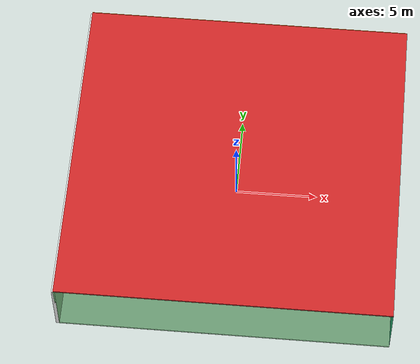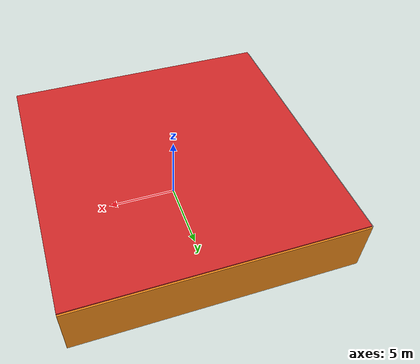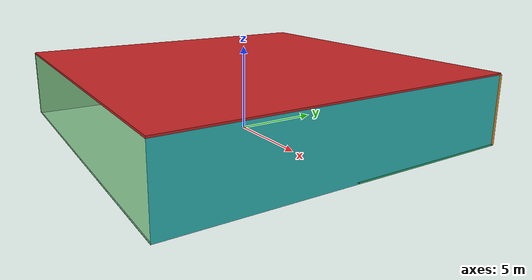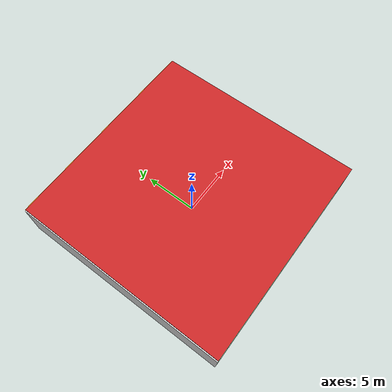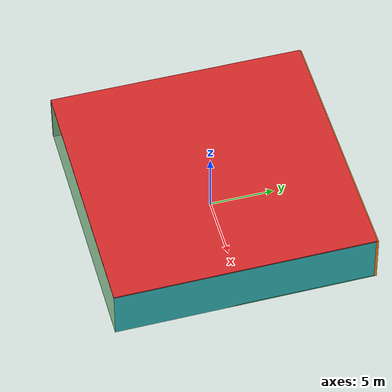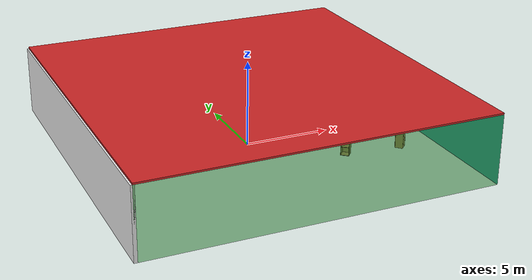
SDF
<sdf version="1.4">
 <world name="default">
  <physics type="ode">
   <max_step_size>0.001</max_step_size>
   <real_time_factor>1</real_time_factor>
   <real_time_update_rate>1000</real_time_update_rate>
   <gravity>0 0 -9.8</gravity>
  </physics>
  <scene><ambient>0.4 0.4 0.4 1</ambient><background>0.7 0.7 0.7 1</background><shadows>1</shadows></scene>
  <model name="Surrounding">
   <static>1</static>
   <link name="Ceiling">
    <collision name="Ceiling_Collision"><geometry><box><size>20 20 0.1</size></box></geometry></collision>
    <visual name="Ceiling_Visual">
     <geometry><box><size>20 20 0.1</size></box></geometry>
     <material>
      <script><uri>file://media/materials/scripts/gazebo.material</uri><name>Gazebo/RedBright</name></script>
     </material>
    </visual>
    <pose>0 0 4.05 0 0 0</pose>
   </link>
   <link name="Wall_South">
    <collision name="Wall_South_Collision">
     <geometry><box><size>20 0 4</size></box></geometry>
     <pose>0 0 2 0 -0 0</pose>
    </collision>
    <visual name="Wall_South_Visual">
     <pose>0 0 2 0 -0 0</pose>
     <geometry><box><size>20 0 4</size></box></geometry>
     <material>
      <script><uri>file://media/materials/scripts/gazebo.material</uri><name>Gazebo/GreenTransparent</name></script>
     </material>
    </visual>
    <velocity_decay><linear>0</linear><angular>0</angular></velocity_decay>
    <pose>0 -10 0 0 -0 0</pose>
   </link>
   <link name="Wall_East">
    <collision name="Wall_21_Collision">
     <geometry><box><size>20 0 4</size></box></geometry>
     <pose>0 0 2 0 -0 0</pose>
    </collision>
    <visual name="Wall_21_Visual">
     <pose>0 0 2 0 -0 0</pose>
     <geometry><box><size>20 0 4</size></box></geometry>
     <material>
      <script><uri>file://media/materials/scripts/gazebo.material</uri><name>Gazebo/Turquoise</name></script>
     </material>
    </visual>
    <velocity_decay><linear>0</linear><angular>0</angular></velocity_decay>
    <pose>10 0 0 0 -0 1.5708</pose>
   </link>
   <link name="Wall_North">
    <collision name="Wall_22_Collision">
     <geometry><box><size>20 0.2 4</size></box></geometry>
     <pose>0 0 2 0 -0 0</pose>
    </collision>
    <visual name="Wall_22_Visual">
     <pose>0 0 2 0 -0 0</pose>
     <geometry><box><size>20 0.2 4</size></box></geometry>
     <material>
      <script><uri>file://media/materials/scripts/gazebo.material</uri><name>Gazebo/Orange</name></script>
     </material>
    </visual>
    <velocity_decay><linear>0</linear><angular>0</angular></velocity_decay>
    <pose>0 10 0 0 -0 0</pose>
   </link>
   <link name="Wall_West">
    <collision name="Wall_23_Collision">
     <geometry><box><size>20 0.2 4</size></box></geometry>
     <pose>0 0 2 0 -0 0</pose>
    </collision>
    <visual name="Wall_23_Visual">
     <pose>0 0 2 0 -0 0</pose>
     <geometry><box><size>20 0.2 4</size></box></geometry>
     <material>
      <script><uri>file://media/materials/scripts/gazebo.material</uri><name>Gazebo/WhiteGlow</name></script>
     </material>
    </visual>
    <velocity_decay><linear>0</linear><angular>0</angular></velocity_decay>
    <pose>-10 0 0 0 0 -1.5708</pose>
   </link>
   <link name="Ground_link">
    <collision name="collision">
     <pose>0 0 .05 0 -0 0</pose>
     <geometry><box><size>20 20 0.1</size></box></geometry>
    </collision>
    <visual name="visual">
     <pose>0 0 .05 0 -0 0</pose>
     <geometry><box><size>20 20 0.1</size></box></geometry>
     <material>
      <script><uri>file://media/materials/scripts/gazebo.material</uri><name>Gazebo/GreenTransparent</name></script>
     </material>
    </visual>
   </link>
   <static>1</static>
  </model>
  <spherical_coordinates>
   <surface_model>EARTH_WGS84</surface_model>
   <latitude_deg>0</latitude_deg>
   <longitude_deg>0</longitude_deg>
   <elevation>0</elevation>
   <heading_deg>0</heading_deg>
  </spherical_coordinates>
  <light name="lightball_0" type="diffuse">
   <diffuse>0.8 0.8 0.8 1</diffuse>
   <specular>0.2 0.2 0.2 1</specular>
   <attenuation>
    <range>100</range>
    <constant>0.7</constant>
    <linear>0.01</linear>
    <quadratic>0.001</quadratic>
   </attenuation>
   <direction>-0.5 0.1 -0.9</direction>
   <pose>9.6713213093 -0.125418762638 2.8595907973 0 0 0</pose>
  </light>
  <light name="lightball_1" type="diffuse">
   <diffuse>0.8 0.8 0.8 1</diffuse>
   <specular>0.2 0.2 0.2 1</specular>
   <attenuation>
    <range>100</range>
    <constant>0.7</constant>
    <linear>0.01</linear>
    <quadratic>0.001</quadratic>
   </attenuation>
   <direction>-0.5 0.1 -0.9</direction>
   <pose>-1.99756007857 5.54819004043 1.83824006642 0 0 0</pose>
  </light>
  <light name="lightball_2" type="diffuse">
   <diffuse>0.8 0.8 0.8 1</diffuse>
   <specular>0.2 0.2 0.2 1</specular>
   <attenuation>
    <range>100</range>
    <constant>0.7</constant>
    <linear>0.01</linear>
    <quadratic>0.001</quadratic>
   </attenuation>
   <direction>-0.5 0.1 -0.9</direction>
   <pose>-4.21019829118 -1.71469125382 1.9712444868 0 0 0</pose>
  </light>
  <light name="lightball_3" type="diffuse">
   <diffuse>0.8 0.8 0.8 1</diffuse>
   <specular>0.2 0.2 0.2 1</specular>
   <attenuation>
    <range>100</range>
    <constant>0.7</constant>
    <linear>0.01</linear>
    <quadratic>0.001</quadratic>
   </attenuation>
   <direction>-0.5 0.1 -0.9</direction>
   <pose>6.79022095801 2.03829696999 0.764521766685 0 0 0</pose>
  </light>
  <light name="lightball_4" type="diffuse">
   <diffuse>0.8 0.8 0.8 1</diffuse>
   <specular>0.2 0.2 0.2 1</specular>
   <attenuation>
    <range>100</range>
    <constant>0.7</constant>
    <linear>0.01</linear>
    <quadratic>0.001</quadratic>
   </attenuation>
   <direction>-0.5 0.1 -0.9</direction>
   <pose>1.72224311218 -5.54561083321 2.41906612425 0 0 0</pose>
  </light>
  <light name="lightball_5" type="diffuse">
   <diffuse>0.8 0.8 0.8 1</diffuse>
   <specular>0.2 0.2 0.2 1</specular>
   <attenuation>
    <range>100</range>
    <constant>0.7</constant>
    <linear>0.01</linear>
    <quadratic>0.001</quadratic>
   </attenuation>
   <direction>-0.5 0.1 -0.9</direction>
   <pose>1.63445293847 -4.73316260132 1.41505723756 0 0 0</pose>
  </light>
  <light name="lightball_6" type="diffuse">
   <diffuse>0.8 0.8 0.8 1</diffuse>
   <specular>0.2 0.2 0.2 1</specular>
   <attenuation>
    <range>100</range>
    <constant>0.7</constant>
    <linear>0.01</linear>
    <quadratic>0.001</quadratic>
   </attenuation>
   <direction>-0.5 0.1 -0.9</direction>
   <pose>-7.24982357376 7.76914676087 3.4095948557 0 0 0</pose>
  </light>
  <light name="lightball_7" type="diffuse">
   <diffuse>0.8 0.8 0.8 1</diffuse>
   <specular>0.2 0.2 0.2 1</specular>
   <attenuation>
    <range>100</range>
    <constant>0.7</constant>
    <linear>0.01</linear>
    <quadratic>0.001</quadratic>
   </attenuation>
   <direction>-0.5 0.1 -0.9</direction>
   <pose>4.1904030488 -1.45323678461 2.69252425243 0 0 0</pose>
  </light>
  <light name="lightball_8" type="diffuse">
   <diffuse>0.8 0.8 0.8 1</diffuse>
   <specular>0.2 0.2 0.2 1</specular>
   <attenuation>
    <range>100</range>
    <constant>0.7</constant>
    <linear>0.01</linear>
    <quadratic>0.001</quadratic>
   </attenuation>
   <direction>-0.5 0.1 -0.9</direction>
   <pose>0.480107121811 9.32557149897 1.68282228671 0 0 0</pose>
  </light>
  <light name="lightball_9" type="diffuse">
   <diffuse>0.8 0.8 0.8 1</diffuse>
   <specular>0.2 0.2 0.2 1</specular>
   <attenuation>
    <range>100</range>
    <constant>0.7</constant>
    <linear>0.01</linear>
    <quadratic>0.001</quadratic>
   </attenuation>
   <direction>-0.5 0.1 -0.9</direction>
   <pose>5.18831255751 -9.30182966792 1.09380880556 0 0 0</pose>
  </light>
  <light name="lightball_10" type="diffuse">
   <diffuse>0.8 0.8 0.8 1</diffuse>
   <specular>0.2 0.2 0.2 1</specular>
   <attenuation>
    <range>100</range>
    <constant>0.7</constant>
    <linear>0.01</linear>
    <quadratic>0.001</quadratic>
   </attenuation>
   <direction>-0.5 0.1 -0.9</direction>
   <pose>2.96060233226 8.14611460931 1.71440167695 0 0 0</pose>
  </light>
  <light name="lightball_11" type="diffuse">
   <diffuse>0.8 0.8 0.8 1</diffuse>
   <specular>0.2 0.2 0.2 1</specular>
   <attenuation>
    <range>100</range>
    <constant>0.7</constant>
    <linear>0.01</linear>
    <quadratic>0.001</quadratic>
   </attenuation>
   <direction>-0.5 0.1 -0.9</direction>
   <pose>9.31923552159 7.20132979348 0.954309494608 0 0 0</pose>
  </light>
  <light name="lightball_12" type="diffuse">
   <diffuse>0.8 0.8 0.8 1</diffuse>
   <specular>0.2 0.2 0.2 1</specular>
   <attenuation>
    <range>100</range>
    <constant>0.7</constant>
    <linear>0.01</linear>
    <quadratic>0.001</quadratic>
   </attenuation>
   <direction>-0.5 0.1 -0.9</direction>
   <pose>-5.94077386289 -6.46075978741 1.62142154945 0 0 0</pose>
  </light>
  <light name="lightball_13" type="diffuse">
   <diffuse>0.8 0.8 0.8 1</diffuse>
   <specular>0.2 0.2 0.2 1</specular>
   <attenuation>
    <range>100</range>
    <constant>0.7</constant>
    <linear>0.01</linear>
    <quadratic>0.001</quadratic>
   </attenuation>
   <direction>-0.5 0.1 -0.9</direction>
   <pose>0.630235375514 8.1923480817 2.3285603195 0 0 0</pose>
  </light>
  <include><uri>model://table</uri><pose>-3.70035257992 -0.54598886423 0 0 0 2.63857776999</pose></include>
  <include>
   <uri>model://robocup_3Dsim_goal</uri>
   <pose>-5.61260386967 1.63667248073 0 0 0 1.89966930381</pose>
  </include>
  <include><uri>model://cabinet</uri><pose>4.49839357524 -3.4075025142 0 0 0 0.840802042281</pose></include>
  <include><uri>model://cabinet</uri><pose>7.82794165454 -3.73419146486 0 0 0 2.35351594747</pose></include>
 </world>
</sdf>

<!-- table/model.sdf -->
<sdf version="1.5">
  <model name="table">
    <static>true</static>
    <link name="link">
      <collision name="surface">
        <pose>0 0 1.0 0 0 0</pose>
        <geometry>
          <box>
            <size>1.5 0.8 0.03</size>
          </box>
        </geometry>
        <surface>
          <friction>
            <ode>
              <mu>0.6</mu>
              <mu2>0.6</mu2>
            </ode>
          </friction>
        </surface>
      </collision>
      <visual name="visual1">
        <pose>0 0 1.0 0 0 0</pose>
        <geometry>
          <box>
            <size>1.5 0.8 0.03</size>
          </box>
        </geometry>
        <material>
          <script>
            <uri>model://media/materials/scripts/gazebo.material</uri>
            <name>Gazebo/Wood</name>
          </script>
        </material>
      </visual>
      <collision name="front_left_leg">
        <pose>0.68 0.38 0.5 0 0 0</pose>
        <geometry>
          <cylinder>
            <radius>0.02</radius>
            <length>1.0</length>
          </cylinder>
        </geometry>
      </collision>
      <visual name="front_left_leg">
        <pose>0.68 0.38 0.5 0 0 0</pose>
        <geometry>
          <cylinder>
            <radius>0.02</radius>
            <length>1.0</length>
          </cylinder>
        </geometry>
        <material>
          <script>
            <uri>model://media/materials/scripts/gazebo.material</uri>
            <name>Gazebo/Grey</name>
          </script>
        </material>
      </visual>
      <collision name="front_right_leg">
        <pose>0.68 -0.38 0.5 0 0 0</pose>
        <geometry>
          <cylinder>
            <radius>0.02</radius>
            <length>1.0</length>
          </cylinder>
        </geometry>
      </collision>
      <visual name="front_right_leg">
        <pose>0.68 -0.38 0.5 0 0 0</pose>
        <geometry>
          <cylinder>
            <radius>0.02</radius>
            <length>1.0</length>
          </cylinder>
        </geometry>
        <material>
          <script>
            <uri>model://media/materials/scripts/gazebo.material</uri>
            <name>Gazebo/Grey</name>
          </script>
        </material>
      </visual>
      <collision name="back_right_leg">
        <pose>-0.68 -0.38 0.5 0 0 0</pose>
        <geometry>
          <cylinder>
            <radius>0.02</radius>
            <length>1.0</length>
          </cylinder>
        </geometry>
      </collision>
      <visual name="back_right_leg">
        <pose>-0.68 -0.38 0.5 0 0 0</pose>
        <geometry>
          <cylinder>
            <radius>0.02</radius>
            <length>1.0</length>
          </cylinder>
        </geometry>
        <material>
          <script>
            <uri>model://media/materials/scripts/gazebo.material</uri>
            <name>Gazebo/Grey</name>
          </script>
        </material>
      </visual>
      <collision name="back_left_leg">
        <pose>-0.68 0.38 0.5 0 0 0</pose>
        <geometry>
          <cylinder>
            <radius>0.02</radius>
            <length>1.0</length>
          </cylinder>
        </geometry>
      </collision>
      <visual name="back_left_leg">
        <pose>-0.68 0.38 0.5 0 0 0</pose>
        <geometry>
          <cylinder>
            <radius>0.02</radius>
            <length>1.0</length>
          </cylinder>
        </geometry>
        <material>
          <script>
            <uri>model://media/materials/scripts/gazebo.material</uri>
            <name>Gazebo/Grey</name>
          </script>
        </material>
      </visual>
    </link>
  </model>
</sdf>

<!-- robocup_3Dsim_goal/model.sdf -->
<sdf version="1.5">
  <model name="robocup_3d_goal">
    <static>true</static>
    <link name="left_post">
      <pose>0 1.05 0.45 0 0 0</pose>
      <collision name="collision">
        <geometry>
          <cylinder>
            <radius>0.05</radius>
            <length>0.9</length>
          </cylinder>
        </geometry>
      </collision>
      <visual name="visual">
        <geometry>
          <cylinder>
            <radius>0.05</radius>
            <length>0.9</length>
          </cylinder>
        </geometry>
        <material>
          <script>
            <uri>file://media/materials/scripts/gazebo.material</uri>
            <name>Gazebo/ZincYellow</name>
          </script>
        </material>
      </visual>
    </link>
    <link name="left_support_horiz_lower">
      <pose>0.30 1.05 0.01 0 0 0</pose>
      <collision name="collision">
        <geometry>
          <box>
            <size>0.50 0.02 0.02</size>
          </box>
        </geometry>
      </collision>
      <visual name="visual">
        <geometry>
          <box>
            <size>0.50 0.02 0.02</size>
          </box>
        </geometry>
        <material>
          <script>
            <uri>file://media/materials/scripts/gazebo.material</uri>
            <name>Gazebo/White</name>
          </script>
        </material>
      </visual>
    </link>
    <link name="left_support_horiz_upper">
      <pose>0.30 1.05 0.79 0 0 0</pose>
      <collision name="collision">
        <geometry>
          <box>
            <size>0.50 0.02 0.02</size>
          </box>
        </geometry>
      </collision>
      <visual name="visual">
        <geometry>
          <box>
            <size>0.50 0.02 0.02</size>
          </box>
        </geometry>
        <material>
          <script>
            <uri>file://media/materials/scripts/gazebo.material</uri>
            <name>Gazebo/White</name>
          </script>
        </material>
      </visual>
    </link>
    <link name="left_support_vertical">
      <pose>0.56 1.05 0.4 0 1.5708 0</pose>
      <collision name="collision">
        <geometry>
          <box>
            <size>0.80 0.02 0.02</size>
          </box>
        </geometry>
      </collision>
      <visual name="visual">
        <geometry>
          <box>
            <size>0.80 0.02 0.02</size>
          </box>
        </geometry>
        <material>
          <script>
            <uri>file://media/materials/scripts/gazebo.material</uri>
            <name>Gazebo/White</name>
          </script>
        </material>
      </visual>
    </link>
    <link name="right_support_horiz_lower">
      <pose>0.30 -1.05 0.01 0 0 0</pose>
      <collision name="collision">
        <geometry>
          <box>
            <size>0.50 0.02 0.02</size>
          </box>
        </geometry>
      </collision>
      <visual name="visual">
        <geometry>
          <box>
            <size>0.50 0.02 0.02</size>
          </box>
        </geometry>
        <material>
          <script>
            <uri>file://media/materials/scripts/gazebo.material</uri>
            <name>Gazebo/White</name>
          </script>
        </material>
      </visual>
    </link>
    <link name="right_support_horiz_upper">
      <pose>0.30 -1.05 0.79 0 0 0</pose>
      <collision name="collision">
        <geometry>
          <box>
            <size>0.50 0.02 0.02</size>
          </box>
        </geometry>
      </collision>
      <visual name="visual">
        <geometry>
          <box>
            <size>0.50 0.02 0.02</size>
          </box>
        </geometry>
        <material>
          <script>
            <uri>file://media/materials/scripts/gazebo.material</uri>
            <name>Gazebo/White</name>
          </script>
        </material>
      </visual>
    </link>
    <link name="right_support_vertical">
      <pose>0.56 -1.05 0.4 0 1.5708 0</pose>
      <collision name="collision">
        <geometry>
          <box>
            <size>0.80 0.02 0.02</size>
          </box>
        </geometry>
      </collision>
      <visual name="visual">
        <geometry>
          <box>
            <size>0.80 0.02 0.02</size>
          </box>
        </geometry>
        <material>
          <script>
            <uri>file://media/materials/scripts/gazebo.material</uri>
            <name>Gazebo/White</name>
          </script>
        </material>
      </visual>
    </link>
    <link name="center_support_horiz_lower">
      <pose>0.56 0 0.01 0 1.5708 0</pose>
      <collision name="collision">
        <geometry>
          <box>
            <size>0.02 2.08 0.02</size>
          </box>
        </geometry>
      </collision>
      <visual name="visual">
        <geometry>
          <box>
            <size>0.02 2.08 0.02</size>
          </box>
        </geometry>
        <material>
          <script>
            <uri>file://media/materials/scripts/gazebo.material</uri>
            <name>Gazebo/White</name>
          </script>
        </material>
      </visual>
    </link>
    <link name="center_support_horiz_upper">
      <pose>0.56 0 0.79 0 1.5708 0</pose>
      <collision name="collision">
        <geometry>
          <box>
            <size>0.02 2.08 0.02</size>
          </box>
        </geometry>
      </collision>
      <visual name="visual">
        <geometry>
          <box>
            <size>0.02 2.08 0.02</size>
          </box>
        </geometry>
        <material>
          <script>
            <uri>file://media/materials/scripts/gazebo.material</uri>
            <name>Gazebo/White</name>
          </script>
        </material>
      </visual>
    </link>
    <link name="right_post">
      <pose>0 -1.05 0.45 0 0 0</pose>
      <collision name="collision">
        <geometry>
          <cylinder>
            <radius>0.05</radius>
            <length>0.9</length>
          </cylinder>
        </geometry>
      </collision>
      <visual name="visual">
        <geometry>
          <cylinder>
            <radius>0.05</radius>
            <length>0.9</length>
          </cylinder>
        </geometry>
        <material>
          <script>
            <uri>file://media/materials/scripts/gazebo.material</uri>
            <name>Gazebo/ZincYellow</name>
          </script>
        </material>
      </visual>
    </link>
    <link name="crossbar">
      <pose>0 0 0.85 1.57 1.57 0</pose>
      <collision name="collision">
        <geometry>
          <cylinder>
            <radius>0.05</radius>
            <length>2.0</length>
          </cylinder>
        </geometry>
      </collision>
      <visual name="visual">
        <geometry>
          <cylinder>
            <radius>0.05</radius>
            <length>2.0</length>
          </cylinder>
        </geometry>
        <material>
          <script>
            <uri>file://media/materials/scripts/gazebo.material</uri>
            <name>Gazebo/ZincYellow</name>
          </script>
        </material>
      </visual>
    </link>
    <link name="center_net">
      <pose>0.56 0 0.40 0 0 0</pose>
      <collision name="collision">
        <geometry>
          <box>
            <size>0.01 2.1 0.80</size>
          </box>
        </geometry>
      </collision>
      <visual name="visual">
        <geometry>
          <box>
            <size>0.01 2.1 0.80</size>
          </box>
        </geometry>
        <material>
          <script>
            <uri>model://../model_source/models/robocup09_spl_field/materials/scripts/</uri>
            <uri>model://../model_source/models/robocup09_spl_field/materials/textures/</uri>
            <name>RoboCup/Net</name>
          </script>
        </material>
      </visual>
    </link>
    <link name="left_net">
      <pose>0.30 1.05 0.40 0 0 0</pose>
      <collision name="collision">
        <geometry>
          <box>
            <size>0.50 0.01 0.76</size>
          </box>
        </geometry>
      </collision>
      <visual name="visual">
        <geometry>
          <box>
            <size>0.50 0.01 0.76</size>
          </box>
        </geometry>
        <material>
          <script>
            <uri>model://../model_source/models/robocup09_spl_field/materials/scripts/</uri>
            <uri>model://../model_source/models/robocup09_spl_field/materials/textures/</uri>
            <name>RoboCup/Net</name>
          </script>
        </material>
      </visual>
    </link>
    <link name="right_net">
      <pose>0.30 -1.05 0.40 0 0 0</pose>
      <collision name="collision">
        <geometry>
          <box>
            <size>0.50 0.01 0.76</size>
          </box>
        </geometry>
      </collision>
      <visual name="visual">
        <geometry>
          <box>
            <size>0.50 0.01 0.76</size>
          </box>
        </geometry>
        <material>
          <script>
            <uri>model://../model_source/models/robocup09_spl_field/materials/scripts/</uri>
            <uri>model://../model_source/models/robocup09_spl_field/materials/textures/</uri>
            <name>RoboCup/Net</name>
          </script>
        </material>
      </visual>
    </link>
  </model>
</sdf>

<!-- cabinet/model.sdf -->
<sdf version="1.5">
  <model name="cabinet">
    <static>true</static>
    <link name="cabinet_bottom_plate">
      <inertial>
        <pose>0 0 -1 0 0 0</pose>
        <inertia>
          <ixx>2.050000</ixx>
          <ixy>0</ixy>
          <ixz>0</ixz>
          <iyy>2.050000</iyy>
          <iyz>0</iyz>
          <izz>2.050000</izz>
        </inertia>
        <mass>25.000000</mass>
      </inertial>
      <collision name="cabinet_bottom_plate_geom">
        <pose>0 0 0.010000 0 0 0</pose>
        <geometry>
          <box>
            <size>0.450000 0.450000 0.020000</size>
          </box>
        </geometry>
      </collision>
      <visual name="cabinet_bottom_plate_geom_visual">
        <pose>0 0 0.010000 0 0 0</pose>
        <geometry>
          <box>
            <size>0.450000 0.450000 0.020000</size>
          </box>
        </geometry>
        <material>
          <script>
            <uri>model://media/materials/scripts/gazebo.material</uri>
            <name>Gazebo/Wood</name>
          </script>
        </material>
      </visual>
      <collision name="cabinet_bottom_plate_geom_cabinet_back_plate">
        <pose>0.235000 0 0.510000 0 0 0</pose>
        <geometry>
          <box>
            <size>0.020000 0.450000 1.020000</size>
          </box>
        </geometry>
      </collision>
      <visual name="cabinet_bottom_plate_geom_cabinet_back_plate_visual">
        <pose>0.235000 0 0.510000 0 0 0</pose>
        <geometry>
          <box>
            <size>0.020000 0.450000 1.020000</size>
          </box>
        </geometry>
        <material>
          <script>
            <uri>model://media/materials/scripts/gazebo.material</uri>
            <name>Gazebo/Wood</name>
          </script>
        </material>
      </visual>
      <collision name="cabinet_bottom_plate_geom_cabinet_left_plate">
        <pose>0 0.235000 0.510000 0 0 0</pose>
        <geometry>
          <box>
            <size>0.450000 0.020000 1.020000</size>
          </box>
        </geometry>
      </collision>
      <visual name="cabinet_bottom_plate_geom_cabinet_left_plate_visual">
        <pose>0 0.235000 0.510000 0 0 0</pose>
        <geometry>
          <box>
            <size>0.450000 0.020000 1.020000</size>
          </box>
        </geometry>
        <material>
          <script>
            <uri>model://media/materials/scripts/gazebo.material</uri>
            <name>Gazebo/Wood</name>
          </script>
        </material>
      </visual>
      <collision name="cabinet_bottom_plate_geom_cabinet_middle_plate">
        <pose>0 0 0.510000 0 0 0</pose>
        <geometry>
          <box>
            <size>0.450000 0.450000 0.020000</size>
          </box>
        </geometry>
      </collision>
      <visual name="cabinet_bottom_plate_geom_cabinet_middle_plate_visual">
        <pose>0 0 0.510000 0 0 0</pose>
        <geometry>
          <box>
            <size>0.450000 0.450000 0.020000</size>
          </box>
        </geometry>
        <material>
          <script>
            <uri>model://media/materials/scripts/gazebo.material</uri>
            <name>Gazebo/Wood</name>
          </script>
        </material>
      </visual>
      <collision name="cabinet_bottom_plate_geom_cabinet_right_plate">
        <pose>0 -0.235000 0.510000 0 0 0</pose>
        <geometry>
          <box>
            <size>0.450000 0.020000 1.020000</size>
          </box>
        </geometry>
      </collision>
      <visual name="cabinet_bottom_plate_geom_cabinet_right_plate_visual">
        <pose>0 -0.235000 0.510000 0 0 0</pose>
        <geometry>
          <box>
            <size>0.450000 0.020000 1.020000</size>
          </box>
        </geometry>
        <material>
          <script>
            <uri>model://media/materials/scripts/gazebo.material</uri>
            <name>Gazebo/Wood</name>
          </script>
        </material>
      </visual>
      <collision name="cabinet_bottom_plate_geom_cabinet_top_plate">
        <pose>0 0 1.010000 0 0 0</pose>
        <geometry>
          <box>
            <size>0.450000 0.450000 0.020000</size>
          </box>
        </geometry>
      </collision>
      <visual name="cabinet_bottom_plate_geom_cabinet_top_plate_visual">
        <pose>0 0 1.010000 0 0 0</pose>
        <geometry>
          <box>
            <size>0.450000 0.450000 0.020000</size>
          </box>
        </geometry>
        <material>
          <script>
            <uri>model://media/materials/scripts/gazebo.material</uri>
            <name>Gazebo/Wood</name>
          </script>
        </material>
      </visual>
    </link>
  </model>
</sdf>
